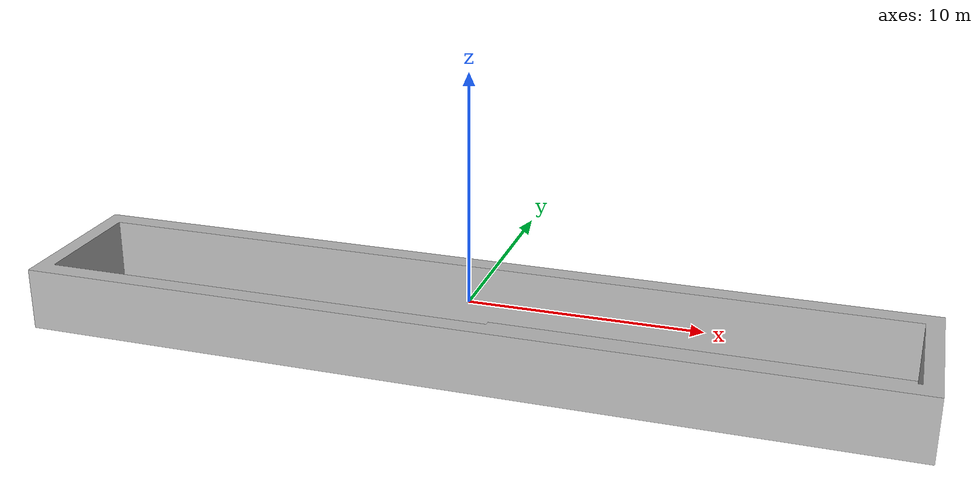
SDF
<?xml version="1.0"?>
<!--  |    This document was autogenerated by scene_to_spawner from pool.stl                   |  -->
<!--  |    EDITING THIS FILE BY HAND IS NOT RECOMMENDED                                        |  -->
<sdf version="1.4">
  <model name="pool">
    <static>true</static>
    <link name="link">
      <visual name="visual">
        <geometry>
          <mesh>
            <uri>file://$(find smtu_uauv)/objects/pool.stl</uri>
          </mesh>
        </geometry>
      </visual>
      <collision name="collision">
        <geometry>
          <mesh>
            <uri>file://$(find smtu_uauv)/objects/pool.stl</uri>
          </mesh>
        </geometry>
        <surface>
          <friction>
            <ode>
              <mu>100</mu>
              <mu2>50</mu2>
            </ode>
          </friction>
        </surface>
      </collision>
    </link>
  </model>
</sdf>
